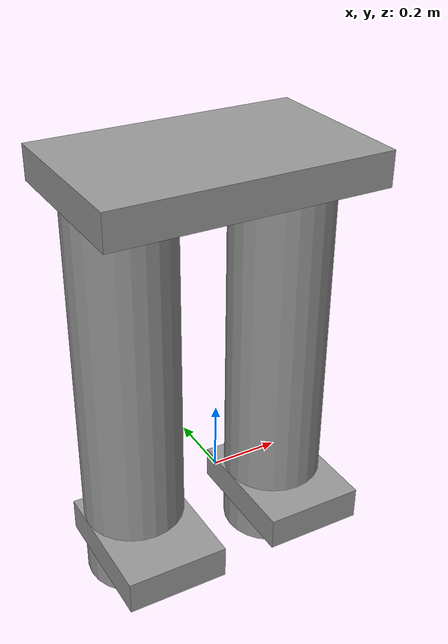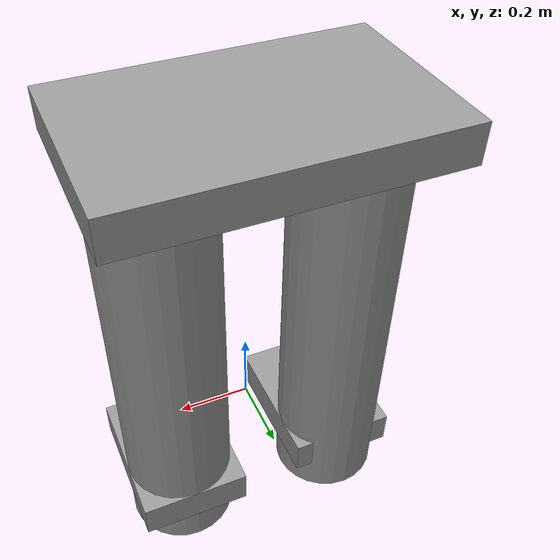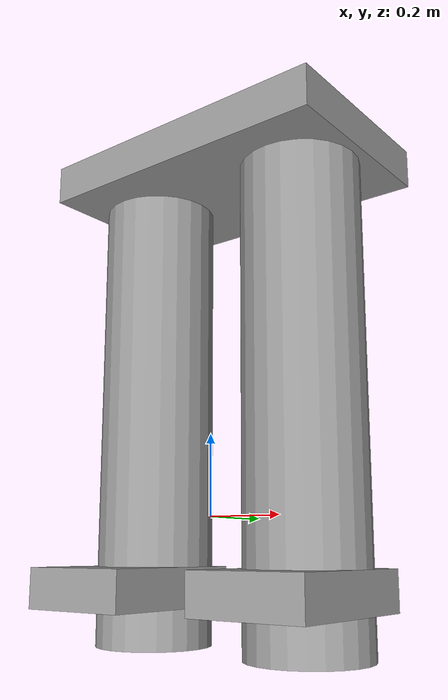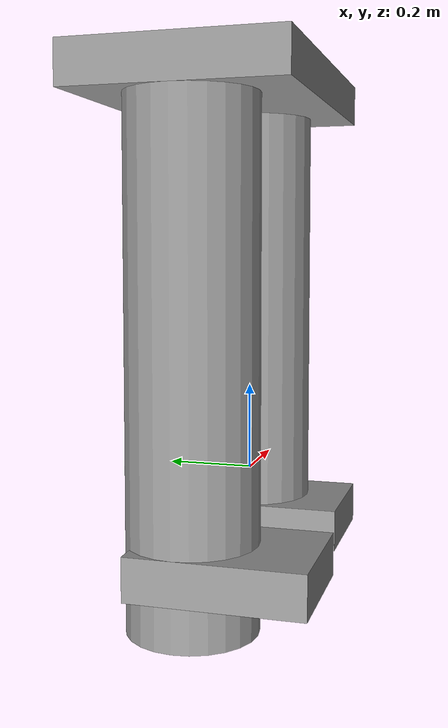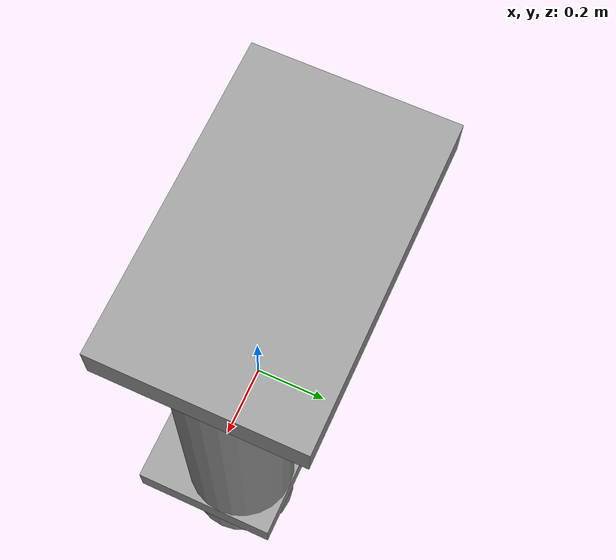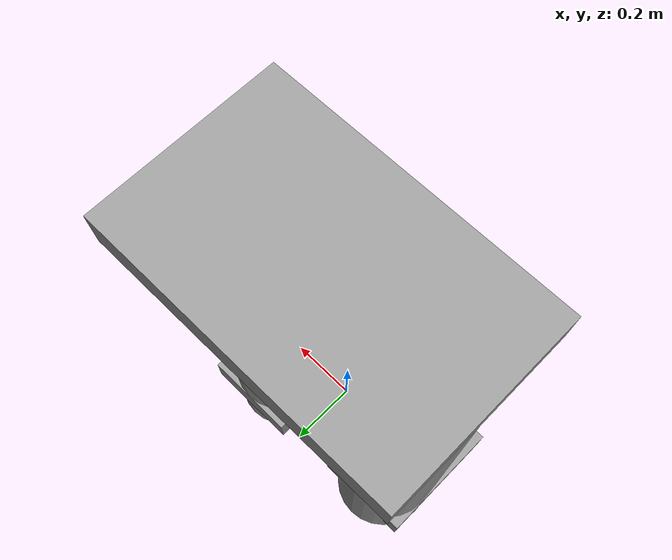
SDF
<?xml version='1.0'?>
<sdf version='1.6'>
  <model name='HumanoidRobot'>
    <link name='link_1'>
      <pose frame=''>-0.241066 -0.022008 -0.17071 0 -0 0</pose>
      <inertial>
        <mass>1</mass>
        <inertia>
          <ixx>0.166667</ixx>
          <ixy>0</ixy>
          <ixz>0</ixz>
          <iyy>0.166667</iyy>
          <iyz>0</iyz>
          <izz>0.166667</izz>
        </inertia>
        <pose frame=''>0 0 0 0 -0 0</pose>
      </inertial>
      <gravity>1</gravity>
      <self_collide>0</self_collide>
      <kinematic>0</kinematic>
      <visual name='visual'>
        <pose frame=''>0 0 0 0 -0 0</pose>
        <geometry>
          <box>
            <size>0.3 0.4 0.1</size>
          </box>
        </geometry>
        <material>
          <lighting>1</lighting>
          <script>
            <uri>file://media/materials/scripts/gazebo.material</uri>
            <name>Gazebo/Grey</name>
          </script>
          <shader type='pixel'>
            <normal_map>__default__</normal_map>
          </shader>
          <ambient>0.3 0.3 0.3 1</ambient>
          <diffuse>0.7 0.7 0.7 1</diffuse>
          <specular>0.01 0.01 0.01 1</specular>
          <emissive>0 0 0 1</emissive>
        </material>
        <transparency>0</transparency>
        <cast_shadows>1</cast_shadows>
      </visual>
      <collision name='collision'>
        <laser_retro>0</laser_retro>
        <max_contacts>10</max_contacts>
        <pose frame=''>0 0 0 0 -0 0</pose>
        <geometry>
          <box>
            <size>0.3 0.4 0.1</size>
          </box>
        </geometry>
        <surface>
          <friction>
            <ode>
              <mu>1</mu>
              <mu2>1</mu2>
              <fdir1>0 0 0</fdir1>
              <slip1>0</slip1>
              <slip2>0</slip2>
            </ode>
            <torsional>
              <coefficient>1</coefficient>
              <patch_radius>0</patch_radius>
              <surface_radius>0</surface_radius>
              <use_patch_radius>1</use_patch_radius>
              <ode>
                <slip>0</slip>
              </ode>
            </torsional>
          </friction>
          <bounce>
            <restitution_coefficient>0</restitution_coefficient>
            <threshold>1e+06</threshold>
          </bounce>
          <contact>
            <collide_without_contact>0</collide_without_contact>
            <collide_without_contact_bitmask>1</collide_without_contact_bitmask>
            <collide_bitmask>1</collide_bitmask>
            <ode>
              <soft_cfm>0</soft_cfm>
              <soft_erp>0.2</soft_erp>
              <kp>1e+13</kp>
              <kd>1</kd>
              <max_vel>0.01</max_vel>
              <min_depth>0</min_depth>
            </ode>
            <bullet>
              <split_impulse>1</split_impulse>
              <split_impulse_penetration_threshold>-0.01</split_impulse_penetration_threshold>
              <soft_cfm>0</soft_cfm>
              <soft_erp>0.2</soft_erp>
              <kp>1e+13</kp>
              <kd>1</kd>
            </bullet>
          </contact>
        </surface>
      </collision>
    </link>
    <link name='link_1_clone'>
      <pose frame=''>0.2366 0.005872 -0.17071 0 -0 0</pose>
      <inertial>
        <mass>1</mass>
        <inertia>
          <ixx>0.166667</ixx>
          <ixy>0</ixy>
          <ixz>0</ixz>
          <iyy>0.166667</iyy>
          <iyz>0</iyz>
          <izz>0.166667</izz>
        </inertia>
        <pose frame=''>0 0 0 0 -0 0</pose>
      </inertial>
      <self_collide>0</self_collide>
      <kinematic>0</kinematic>
      <gravity>1</gravity>
      <visual name='visual'>
        <pose frame=''>0 0 0 0 -0 0</pose>
        <geometry>
          <box>
            <size>0.3 0.4 0.1</size>
          </box>
        </geometry>
        <material>
          <lighting>1</lighting>
          <script>
            <uri>file://media/materials/scripts/gazebo.material</uri>
            <name>Gazebo/Grey</name>
          </script>
          <shader type='pixel'>
            <normal_map>__default__</normal_map>
          </shader>
          <ambient>0.3 0.3 0.3 1</ambient>
          <diffuse>0.7 0.7 0.7 1</diffuse>
          <specular>0.01 0.01 0.01 1</specular>
          <emissive>0 0 0 1</emissive>
        </material>
        <transparency>0</transparency>
        <cast_shadows>1</cast_shadows>
      </visual>
      <collision name='collision'>
        <laser_retro>0</laser_retro>
        <max_contacts>10</max_contacts>
        <pose frame=''>0 0 0 0 -0 0</pose>
        <geometry>
          <box>
            <size>0.3 0.4 0.1</size>
          </box>
        </geometry>
        <surface>
          <friction>
            <ode>
              <mu>1</mu>
              <mu2>1</mu2>
              <fdir1>0 0 0</fdir1>
              <slip1>0</slip1>
              <slip2>0</slip2>
            </ode>
            <torsional>
              <coefficient>1</coefficient>
              <patch_radius>0</patch_radius>
              <surface_radius>0</surface_radius>
              <use_patch_radius>1</use_patch_radius>
              <ode>
                <slip>0</slip>
              </ode>
            </torsional>
          </friction>
          <bounce>
            <restitution_coefficient>0</restitution_coefficient>
            <threshold>1e+06</threshold>
          </bounce>
          <contact>
            <collide_without_contact>0</collide_without_contact>
            <collide_without_contact_bitmask>1</collide_without_contact_bitmask>
            <collide_bitmask>1</collide_bitmask>
            <ode>
              <soft_cfm>0</soft_cfm>
              <soft_erp>0.2</soft_erp>
              <kp>1e+13</kp>
              <kd>1</kd>
              <max_vel>0.01</max_vel>
              <min_depth>0</min_depth>
            </ode>
            <bullet>
              <split_impulse>1</split_impulse>
              <split_impulse_penetration_threshold>-0.01</split_impulse_penetration_threshold>
              <soft_cfm>0</soft_cfm>
              <soft_erp>0.2</soft_erp>
              <kp>1e+13</kp>
              <kd>1</kd>
            </bullet>
          </contact>
        </surface>
      </collision>
    </link>
    <link name='link_2'>
      <pose frame=''>-0.241066 0.067033 0.27929 0 -0 0</pose>
      <inertial>
        <mass>1</mass>
        <inertia>
          <ixx>0.145833</ixx>
          <ixy>0</ixy>
          <ixz>0</ixz>
          <iyy>0.145833</iyy>
          <iyz>0</iyz>
          <izz>0.125</izz>
        </inertia>
        <pose frame=''>0 0 0 0 -0 0</pose>
      </inertial>
      <gravity>1</gravity>
      <self_collide>0</self_collide>
      <kinematic>0</kinematic>
      <visual name='visual'>
        <pose frame=''>0 0 0 0 -0 0</pose>
        <geometry>
          <cylinder>
            <radius>0.15</radius>
            <length>1.2</length>
          </cylinder>
        </geometry>
        <material>
          <lighting>1</lighting>
          <script>
            <uri>file://media/materials/scripts/gazebo.material</uri>
            <name>Gazebo/Grey</name>
          </script>
          <shader type='pixel'>
            <normal_map>__default__</normal_map>
          </shader>
          <ambient>0.3 0.3 0.3 1</ambient>
          <diffuse>0.7 0.7 0.7 1</diffuse>
          <specular>0.01 0.01 0.01 1</specular>
          <emissive>0 0 0 1</emissive>
        </material>
        <transparency>0</transparency>
        <cast_shadows>1</cast_shadows>
      </visual>
      <collision name='collision'>
        <laser_retro>0</laser_retro>
        <max_contacts>10</max_contacts>
        <pose frame=''>0 0 0 0 -0 0</pose>
        <geometry>
          <cylinder>
            <radius>0.15</radius>
            <length>1.2</length>
          </cylinder>
        </geometry>
        <surface>
          <friction>
            <ode>
              <mu>1</mu>
              <mu2>1</mu2>
              <fdir1>0 0 0</fdir1>
              <slip1>0</slip1>
              <slip2>0</slip2>
            </ode>
            <torsional>
              <coefficient>1</coefficient>
              <patch_radius>0</patch_radius>
              <surface_radius>0</surface_radius>
              <use_patch_radius>1</use_patch_radius>
              <ode>
                <slip>0</slip>
              </ode>
            </torsional>
          </friction>
          <bounce>
            <restitution_coefficient>0</restitution_coefficient>
            <threshold>1e+06</threshold>
          </bounce>
          <contact>
            <collide_without_contact>0</collide_without_contact>
            <collide_without_contact_bitmask>1</collide_without_contact_bitmask>
            <collide_bitmask>1</collide_bitmask>
            <ode>
              <soft_cfm>0</soft_cfm>
              <soft_erp>0.2</soft_erp>
              <kp>1e+13</kp>
              <kd>1</kd>
              <max_vel>0.01</max_vel>
              <min_depth>0</min_depth>
            </ode>
            <bullet>
              <split_impulse>1</split_impulse>
              <split_impulse_penetration_threshold>-0.01</split_impulse_penetration_threshold>
              <soft_cfm>0</soft_cfm>
              <soft_erp>0.2</soft_erp>
              <kp>1e+13</kp>
              <kd>1</kd>
            </bullet>
          </contact>
        </surface>
      </collision>
    </link>
    <link name='link_2_clone'>
      <pose frame=''>0.2366 0.055872 0.27929 0 -0 0</pose>
      <inertial>
        <mass>1</mass>
        <inertia>
          <ixx>0.145833</ixx>
          <ixy>0</ixy>
          <ixz>0</ixz>
          <iyy>0.145833</iyy>
          <iyz>0</iyz>
          <izz>0.125</izz>
        </inertia>
        <pose frame=''>0 0 0 0 -0 0</pose>
      </inertial>
      <self_collide>0</self_collide>
      <kinematic>0</kinematic>
      <visual name='visual'>
        <pose frame=''>0 0 0 0 -0 0</pose>
        <geometry>
          <cylinder>
            <radius>0.15</radius>
            <length>1.2</length>
          </cylinder>
        </geometry>
        <material>
          <lighting>1</lighting>
          <script>
            <uri>file://media/materials/scripts/gazebo.material</uri>
            <name>Gazebo/Grey</name>
          </script>
          <shader type='pixel'>
            <normal_map>__default__</normal_map>
          </shader>
          <ambient>0.3 0.3 0.3 1</ambient>
          <diffuse>0.7 0.7 0.7 1</diffuse>
          <specular>0.01 0.01 0.01 1</specular>
          <emissive>0 0 0 1</emissive>
        </material>
        <transparency>0</transparency>
        <cast_shadows>1</cast_shadows>
      </visual>
      <collision name='collision'>
        <laser_retro>0</laser_retro>
        <max_contacts>10</max_contacts>
        <pose frame=''>0 0 0 0 -0 0</pose>
        <geometry>
          <cylinder>
            <radius>0.15</radius>
            <length>1.2</length>
          </cylinder>
        </geometry>
        <surface>
          <friction>
            <ode>
              <mu>1</mu>
              <mu2>1</mu2>
              <fdir1>0 0 0</fdir1>
              <slip1>0</slip1>
              <slip2>0</slip2>
            </ode>
            <torsional>
              <coefficient>1</coefficient>
              <patch_radius>0</patch_radius>
              <surface_radius>0</surface_radius>
              <use_patch_radius>1</use_patch_radius>
              <ode>
                <slip>0</slip>
              </ode>
            </torsional>
          </friction>
          <bounce>
            <restitution_coefficient>0</restitution_coefficient>
            <threshold>1e+06</threshold>
          </bounce>
          <contact>
            <collide_without_contact>0</collide_without_contact>
            <collide_without_contact_bitmask>1</collide_without_contact_bitmask>
            <collide_bitmask>1</collide_bitmask>
            <ode>
              <soft_cfm>0</soft_cfm>
              <soft_erp>0.2</soft_erp>
              <kp>1e+13</kp>
              <kd>1</kd>
              <max_vel>0.01</max_vel>
              <min_depth>0</min_depth>
            </ode>
            <bullet>
              <split_impulse>1</split_impulse>
              <split_impulse_penetration_threshold>-0.01</split_impulse_penetration_threshold>
              <soft_cfm>0</soft_cfm>
              <soft_erp>0.2</soft_erp>
              <kp>1e+13</kp>
              <kd>1</kd>
            </bullet>
          </contact>
        </surface>
      </collision>
    </link>
    <link name='link_3'>
      <pose frame=''>0.008934 0.067033 0.90784 0 -0 0</pose>
      <inertial>
        <mass>1</mass>
        <inertia>
          <ixx>0.166667</ixx>
          <ixy>0</ixy>
          <ixz>0</ixz>
          <iyy>0.166667</iyy>
          <iyz>0</iyz>
          <izz>0.166667</izz>
        </inertia>
        <pose frame=''>0 0 0 0 -0 0</pose>
      </inertial>
      <gravity>1</gravity>
      <self_collide>0</self_collide>
      <kinematic>0</kinematic>
      <visual name='visual'>
        <pose frame=''>0 0 0 0 -0 0</pose>
        <geometry>
          <box>
            <size>0.8 0.5 0.1</size>
          </box>
        </geometry>
        <material>
          <lighting>1</lighting>
          <script>
            <uri>file://media/materials/scripts/gazebo.material</uri>
            <name>Gazebo/Grey</name>
          </script>
          <shader type='pixel'>
            <normal_map>__default__</normal_map>
          </shader>
          <ambient>0.3 0.3 0.3 1</ambient>
          <diffuse>0.7 0.7 0.7 1</diffuse>
          <specular>0.01 0.01 0.01 1</specular>
          <emissive>0 0 0 1</emissive>
        </material>
        <transparency>0</transparency>
        <cast_shadows>1</cast_shadows>
      </visual>
      <collision name='collision'>
        <laser_retro>0</laser_retro>
        <max_contacts>10</max_contacts>
        <pose frame=''>0 0 0 0 -0 0</pose>
        <geometry>
          <box>
            <size>0.8 0.5 0.1</size>
          </box>
        </geometry>
        <surface>
          <friction>
            <ode>
              <mu>1</mu>
              <mu2>1</mu2>
              <fdir1>0 0 0</fdir1>
              <slip1>0</slip1>
              <slip2>0</slip2>
            </ode>
            <torsional>
              <coefficient>1</coefficient>
              <patch_radius>0</patch_radius>
              <surface_radius>0</surface_radius>
              <use_patch_radius>1</use_patch_radius>
              <ode>
                <slip>0</slip>
              </ode>
            </torsional>
          </friction>
          <bounce>
            <restitution_coefficient>0</restitution_coefficient>
            <threshold>1e+06</threshold>
          </bounce>
          <contact>
            <collide_without_contact>0</collide_without_contact>
            <collide_without_contact_bitmask>1</collide_without_contact_bitmask>
            <collide_bitmask>1</collide_bitmask>
            <ode>
              <soft_cfm>0</soft_cfm>
              <soft_erp>0.2</soft_erp>
              <kp>1e+13</kp>
              <kd>1</kd>
              <max_vel>0.01</max_vel>
              <min_depth>0</min_depth>
            </ode>
            <bullet>
              <split_impulse>1</split_impulse>
              <split_impulse_penetration_threshold>-0.01</split_impulse_penetration_threshold>
              <soft_cfm>0</soft_cfm>
              <soft_erp>0.2</soft_erp>
              <kp>1e+13</kp>
              <kd>1</kd>
            </bullet>
          </contact>
        </surface>
      </collision>
    </link>
    <joint name='link_1_JOINT_0' type='fixed'>
      <parent>link_1</parent>
      <child>link_2</child>
      <pose frame=''>0 0 0 0 -0 0</pose>
      <physics>
        <ode>
          <limit>
            <cfm>0</cfm>
            <erp>0.2</erp>
          </limit>
          <suspension>
            <cfm>0</cfm>
            <erp>0.2</erp>
          </suspension>
        </ode>
      </physics>
    </joint>
    <joint name='link_2_clone_JOINT_1' type='fixed'>
      <parent>link_1_clone</parent>
      <child>link_2_clone</child>
      <pose frame=''>0 0 0 0 -0 0</pose>
      <physics>
        <ode>
          <limit>
            <cfm>0</cfm>
            <erp>0.2</erp>
          </limit>
          <suspension>
            <cfm>0</cfm>
            <erp>0.2</erp>
          </suspension>
        </ode>
      </physics>
    </joint>
    <joint name='link_2_clone_JOINT_3' type='fixed'>
      <parent>link_2_clone</parent>
      <child>link_3</child>
      <pose frame=''>0 0 0 0 -0 0</pose>
      <physics>
        <ode>
          <limit>
            <cfm>0</cfm>
            <erp>0.2</erp>
          </limit>
          <suspension>
            <cfm>0</cfm>
            <erp>0.2</erp>
          </suspension>
        </ode>
      </physics>
    </joint>
    <joint name='link_3_JOINT_2' type='fixed'>
      <parent>link_2</parent>
      <child>link_3</child>
      <pose frame=''>0 0 0 0 -0 0</pose>
      <physics>
        <ode>
          <limit>
            <cfm>0</cfm>
            <erp>0.2</erp>
          </limit>
          <suspension>
            <cfm>0</cfm>
            <erp>0.2</erp>
          </suspension>
        </ode>
      </physics>
    </joint>
    <static>0</static>
    <allow_auto_disable>1</allow_auto_disable>
  </model>
</sdf>
